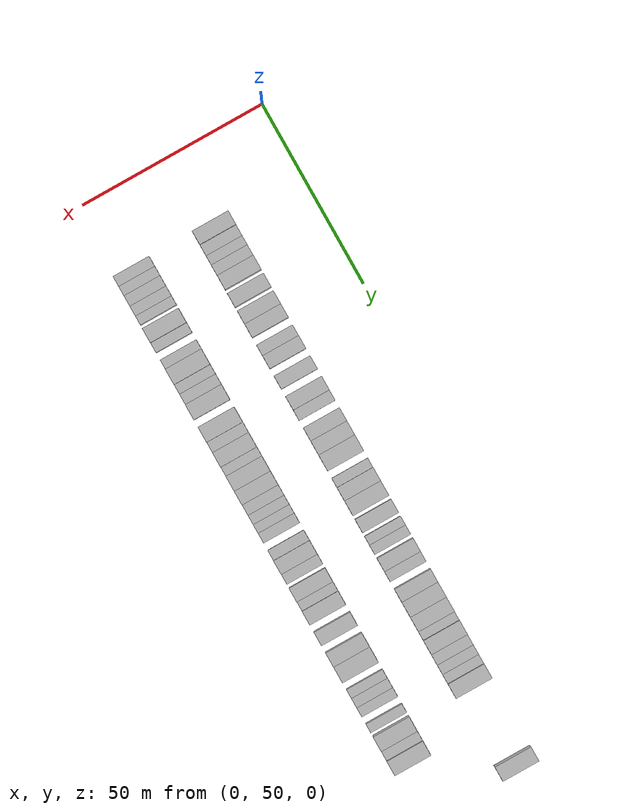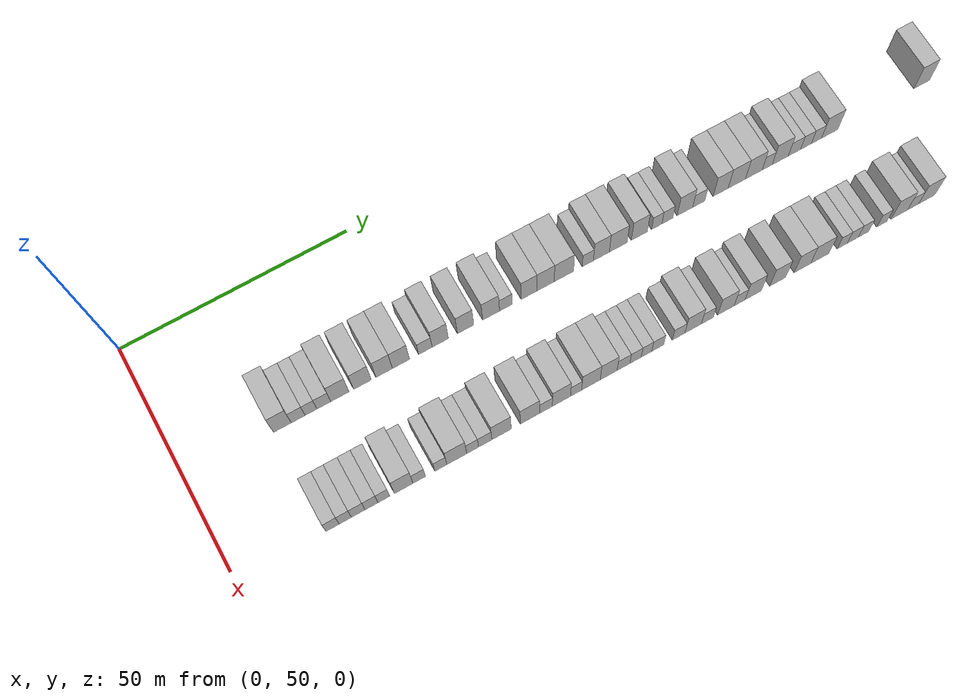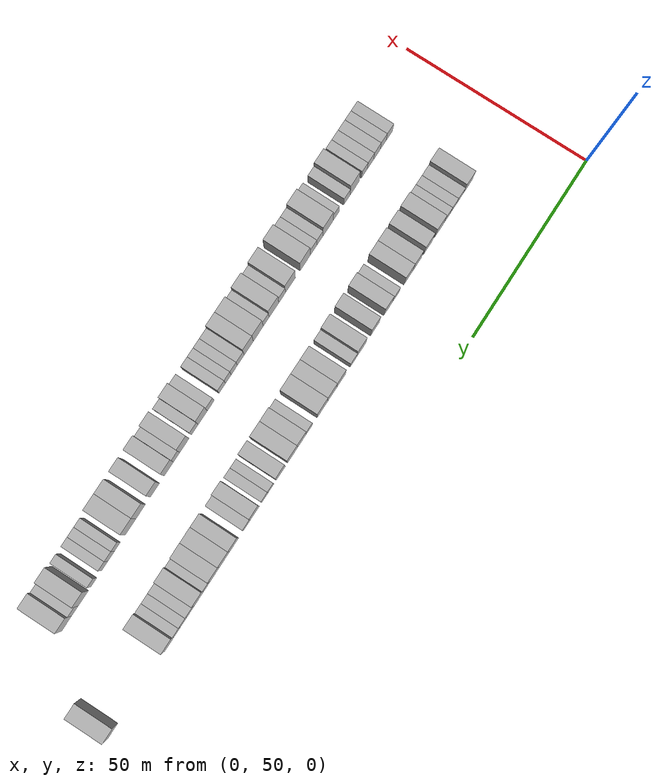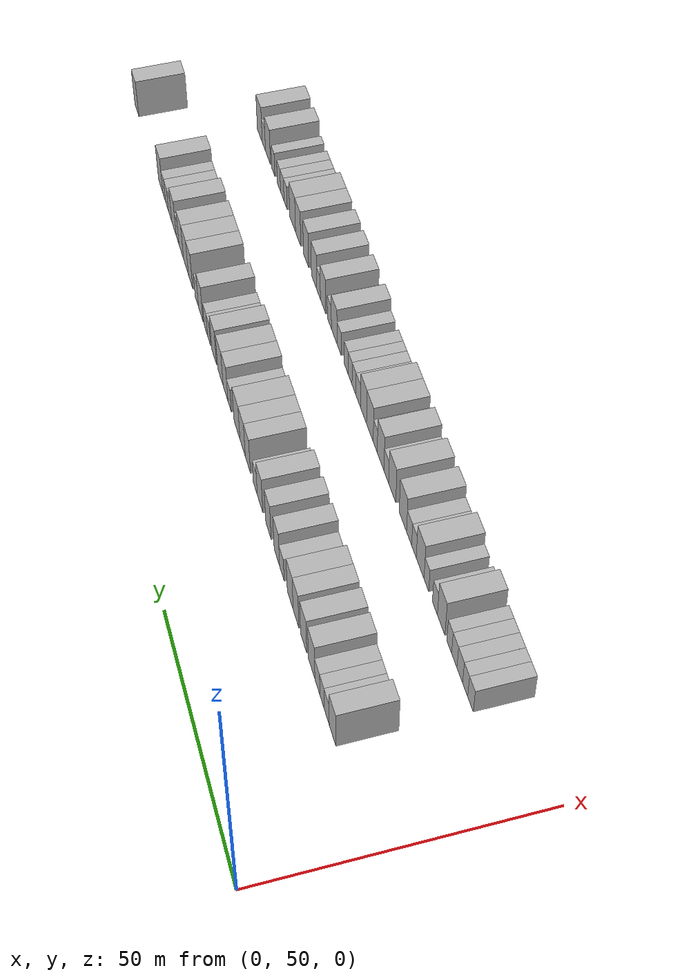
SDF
<sdf version="1.6">
 <world name="default">
  <model name="building_71">
   <static>1</static>
   <pose>25.0000 70.6925 0 0.000000 0.000000 0.000000</pose>
   <link name="link">
    <pose>0 0 4.50 0 0 0</pose>
    <collision name="collision"><geometry><box><size>10.0000 3.7847 9.0000</size></box></geometry></collision>
    <visual name="visual">
     <cast_shadows>0</cast_shadows>
     <geometry><box><size>10.0000 3.7847 9.0000</size></box></geometry>
     <material>
      <script>
       <uri>model://HANNAS_wall/materials/scripts</uri>
       <uri>model://HANNAS_wall/materials/textures</uri>
       <name>vrc/HANNAS_wall</name>
      </script>
     </material>
    </visual>
   </link>
  </model>
  <model name="building_72">
   <static>1</static>
   <pose>25.0000 74.0738 0 0.000000 0.000000 0.000000</pose>
   <link name="link">
    <pose>0 0 3.00 0 0 0</pose>
    <collision name="collision"><geometry><box><size>10.0000 2.9777 6.0000</size></box></geometry></collision>
    <visual name="visual">
     <cast_shadows>0</cast_shadows>
     <geometry><box><size>10.0000 2.9777 6.0000</size></box></geometry>
     <material>
      <script>
       <uri>model://HANNAS_wall/materials/scripts</uri>
       <uri>model://HANNAS_wall/materials/textures</uri>
       <name>vrc/HANNAS_wall</name>
      </script>
     </material>
    </visual>
   </link>
  </model>
  <model name="building_73">
   <static>1</static>
   <pose>25.0000 76.8311 0 0.000000 0.000000 0.000000</pose>
   <link name="link">
    <pose>0 0 3.00 0 0 0</pose>
    <collision name="collision"><geometry><box><size>10.0000 2.5370 6.0000</size></box></geometry></collision>
    <visual name="visual">
     <cast_shadows>0</cast_shadows>
     <geometry><box><size>10.0000 2.5370 6.0000</size></box></geometry>
     <material>
      <script>
       <uri>model://HANNAS_wall/materials/scripts</uri>
       <uri>model://HANNAS_wall/materials/textures</uri>
       <name>vrc/HANNAS_wall</name>
      </script>
     </material>
    </visual>
   </link>
  </model>
  <model name="building_74">
   <static>1</static>
   <pose>25.0000 79.5878 0 0.000000 0.000000 0.000000</pose>
   <link name="link">
    <pose>0 0 3.00 0 0 0</pose>
    <collision name="collision"><geometry><box><size>10.0000 2.9764 6.0000</size></box></geometry></collision>
    <visual name="visual">
     <cast_shadows>0</cast_shadows>
     <geometry><box><size>10.0000 2.9764 6.0000</size></box></geometry>
     <material>
      <script>
       <uri>model://HANNAS_wall/materials/scripts</uri>
       <uri>model://HANNAS_wall/materials/textures</uri>
       <name>vrc/HANNAS_wall</name>
      </script>
     </material>
    </visual>
   </link>
  </model>
  <model name="building_75">
   <static>1</static>
   <pose>25.0000 83.0574 0 0.000000 0.000000 0.000000</pose>
   <link name="link">
    <pose>0 0 4.50 0 0 0</pose>
    <collision name="collision"><geometry><box><size>10.0000 3.9626 9.0000</size></box></geometry></collision>
    <visual name="visual">
     <cast_shadows>0</cast_shadows>
     <geometry><box><size>10.0000 3.9626 9.0000</size></box></geometry>
     <material>
      <script>
       <uri>model://HANNAS_wall/materials/scripts</uri>
       <uri>model://HANNAS_wall/materials/textures</uri>
       <name>vrc/HANNAS_wall</name>
      </script>
     </material>
    </visual>
   </link>
  </model>
  <model name="building_76">
   <static>1</static>
   <pose>25.0000 87.9692 0 0.000000 0.000000 0.000000</pose>
   <link name="link">
    <pose>0 0 4.50 0 0 0</pose>
    <collision name="collision"><geometry><box><size>10.0000 3.8612 9.0000</size></box></geometry></collision>
    <visual name="visual">
     <cast_shadows>0</cast_shadows>
     <geometry><box><size>10.0000 3.8612 9.0000</size></box></geometry>
     <material>
      <script>
       <uri>model://HANNAS_wall/materials/scripts</uri>
       <uri>model://HANNAS_wall/materials/textures</uri>
       <name>vrc/HANNAS_wall</name>
      </script>
     </material>
    </visual>
   </link>
  </model>
  <model name="building_77">
   <static>1</static>
   <pose>25.0000 92.7121 0 0.000000 0.000000 0.000000</pose>
   <link name="link">
    <pose>0 0 4.50 0 0 0</pose>
    <collision name="collision"><geometry><box><size>10.0000 3.6245 9.0000</size></box></geometry></collision>
    <visual name="visual">
     <cast_shadows>0</cast_shadows>
     <geometry><box><size>10.0000 3.6245 9.0000</size></box></geometry>
     <material>
      <script>
       <uri>model://HANNAS_wall/materials/scripts</uri>
       <uri>model://HANNAS_wall/materials/textures</uri>
       <name>vrc/HANNAS_wall</name>
      </script>
     </material>
    </visual>
   </link>
  </model>
  <model name="building_78">
   <static>1</static>
   <pose>25.0000 96.4121 0 0.000000 0.000000 0.000000</pose>
   <link name="link">
    <pose>0 0 4.50 0 0 0</pose>
    <collision name="collision"><geometry><box><size>10.0000 3.7755 9.0000</size></box></geometry></collision>
    <visual name="visual">
     <cast_shadows>0</cast_shadows>
     <geometry><box><size>10.0000 3.7755 9.0000</size></box></geometry>
     <material>
      <script>
       <uri>model://HANNAS_wall/materials/scripts</uri>
       <uri>model://HANNAS_wall/materials/textures</uri>
       <name>vrc/HANNAS_wall</name>
      </script>
     </material>
    </visual>
   </link>
  </model>
  <model name="building_79">
   <static>1</static>
   <pose>25.0000 101.7986 0 0.000000 0.000000 0.000000</pose>
   <link name="link">
    <pose>0 0 3.00 0 0 0</pose>
    <collision name="collision"><geometry><box><size>10.0000 2.9976 6.0000</size></box></geometry></collision>
    <visual name="visual">
     <cast_shadows>0</cast_shadows>
     <geometry><box><size>10.0000 2.9976 6.0000</size></box></geometry>
     <material>
      <script>
       <uri>model://HANNAS_wall/materials/scripts</uri>
       <uri>model://HANNAS_wall/materials/textures</uri>
       <name>vrc/HANNAS_wall</name>
      </script>
     </material>
    </visual>
   </link>
  </model>
  <model name="building_80">
   <static>1</static>
   <pose>25.0000 105.1049 0 0.000000 0.000000 0.000000</pose>
   <link name="link">
    <pose>0 0 4.50 0 0 0</pose>
    <collision name="collision"><geometry><box><size>10.0000 3.6151 9.0000</size></box></geometry></collision>
    <visual name="visual">
     <cast_shadows>0</cast_shadows>
     <geometry><box><size>10.0000 3.6151 9.0000</size></box></geometry>
     <material>
      <script>
       <uri>model://HANNAS_wall/materials/scripts</uri>
       <uri>model://HANNAS_wall/materials/textures</uri>
       <name>vrc/HANNAS_wall</name>
      </script>
     </material>
    </visual>
   </link>
  </model>
  <model name="building_81">
   <static>1</static>
   <pose>25.0000 110.7392 0 0.000000 0.000000 0.000000</pose>
   <link name="link">
    <pose>0 0 4.50 0 0 0</pose>
    <collision name="collision"><geometry><box><size>10.0000 3.6534 9.0000</size></box></geometry></collision>
    <visual name="visual">
     <cast_shadows>0</cast_shadows>
     <geometry><box><size>10.0000 3.6534 9.0000</size></box></geometry>
     <material>
      <script>
       <uri>model://HANNAS_wall/materials/scripts</uri>
       <uri>model://HANNAS_wall/materials/textures</uri>
       <name>vrc/HANNAS_wall</name>
      </script>
     </material>
    </visual>
   </link>
  </model>
  <model name="building_82">
   <static>1</static>
   <pose>25.0000 116.4728 0 0.000000 0.000000 0.000000</pose>
   <link name="link">
    <pose>0 0 4.50 0 0 0</pose>
    <collision name="collision"><geometry><box><size>10.0000 3.8138 9.0000</size></box></geometry></collision>
    <visual name="visual">
     <cast_shadows>0</cast_shadows>
     <geometry><box><size>10.0000 3.8138 9.0000</size></box></geometry>
     <material>
      <script>
       <uri>model://HANNAS_wall/materials/scripts</uri>
       <uri>model://HANNAS_wall/materials/textures</uri>
       <name>vrc/HANNAS_wall</name>
      </script>
     </material>
    </visual>
   </link>
  </model>
  <model name="building_83">
   <static>1</static>
   <pose>25.0000 119.8220 0 0.000000 0.000000 0.000000</pose>
   <link name="link">
    <pose>0 0 3.00 0 0 0</pose>
    <collision name="collision"><geometry><box><size>10.0000 2.8844 6.0000</size></box></geometry></collision>
    <visual name="visual">
     <cast_shadows>0</cast_shadows>
     <geometry><box><size>10.0000 2.8844 6.0000</size></box></geometry>
     <material>
      <script>
       <uri>model://HANNAS_wall/materials/scripts</uri>
       <uri>model://HANNAS_wall/materials/textures</uri>
       <name>vrc/HANNAS_wall</name>
      </script>
     </material>
    </visual>
   </link>
  </model>
  <model name="building_84">
   <static>1</static>
   <pose>25.0000 125.0940 0 0.000000 0.000000 0.000000</pose>
   <link name="link">
    <pose>0 0 4.50 0 0 0</pose>
    <collision name="collision"><geometry><box><size>10.0000 3.6598 9.0000</size></box></geometry></collision>
    <visual name="visual">
     <cast_shadows>0</cast_shadows>
     <geometry><box><size>10.0000 3.6598 9.0000</size></box></geometry>
     <material>
      <script>
       <uri>model://HANNAS_wall/materials/scripts</uri>
       <uri>model://HANNAS_wall/materials/textures</uri>
       <name>vrc/HANNAS_wall</name>
      </script>
     </material>
    </visual>
   </link>
  </model>
  <model name="building_85">
   <static>1</static>
   <pose>25.0000 128.8646 0 0.000000 0.000000 0.000000</pose>
   <link name="link">
    <pose>0 0 4.50 0 0 0</pose>
    <collision name="collision"><geometry><box><size>10.0000 3.8814 9.0000</size></box></geometry></collision>
    <visual name="visual">
     <cast_shadows>0</cast_shadows>
     <geometry><box><size>10.0000 3.8814 9.0000</size></box></geometry>
     <material>
      <script>
       <uri>model://HANNAS_wall/materials/scripts</uri>
       <uri>model://HANNAS_wall/materials/textures</uri>
       <name>vrc/HANNAS_wall</name>
      </script>
     </material>
    </visual>
   </link>
  </model>
  <model name="building_86">
   <static>1</static>
   <pose>25.0000 133.0244 0 0.000000 0.000000 0.000000</pose>
   <link name="link">
    <pose>0 0 4.50 0 0 0</pose>
    <collision name="collision"><geometry><box><size>10.0000 4.4382 9.0000</size></box></geometry></collision>
    <visual name="visual">
     <cast_shadows>0</cast_shadows>
     <geometry><box><size>10.0000 4.4382 9.0000</size></box></geometry>
     <material>
      <script>
       <uri>model://HANNAS_wall/materials/scripts</uri>
       <uri>model://HANNAS_wall/materials/textures</uri>
       <name>vrc/HANNAS_wall</name>
      </script>
     </material>
    </visual>
   </link>
  </model>
  <model name="building_87">
   <static>1</static>
   <pose>25.0000 138.5246 0 0.000000 0.000000 0.000000</pose>
   <link name="link">
    <pose>0 0 3.00 0 0 0</pose>
    <collision name="collision"><geometry><box><size>10.0000 2.5621 6.0000</size></box></geometry></collision>
    <visual name="visual">
     <cast_shadows>0</cast_shadows>
     <geometry><box><size>10.0000 2.5621 6.0000</size></box></geometry>
     <material>
      <script>
       <uri>model://HANNAS_wall/materials/scripts</uri>
       <uri>model://HANNAS_wall/materials/textures</uri>
       <name>vrc/HANNAS_wall</name>
      </script>
     </material>
    </visual>
   </link>
  </model>
  <model name="building_88">
   <static>1</static>
   <pose>25.0000 141.6546 0 0.000000 0.000000 0.000000</pose>
   <link name="link">
    <pose>0 0 4.50 0 0 0</pose>
    <collision name="collision"><geometry><box><size>10.0000 3.6978 9.0000</size></box></geometry></collision>
    <visual name="visual">
     <cast_shadows>0</cast_shadows>
     <geometry><box><size>10.0000 3.6978 9.0000</size></box></geometry>
     <material>
      <script>
       <uri>model://HANNAS_wall/materials/scripts</uri>
       <uri>model://HANNAS_wall/materials/textures</uri>
       <name>vrc/HANNAS_wall</name>
      </script>
     </material>
    </visual>
   </link>
  </model>
  <model name="building_89">
   <static>1</static>
   <pose>25.0000 145.5647 0 0.000000 0.000000 0.000000</pose>
   <link name="link">
    <pose>0 0 4.50 0 0 0</pose>
    <collision name="collision"><geometry><box><size>10.0000 4.1223 9.0000</size></box></geometry></collision>
    <visual name="visual">
     <cast_shadows>0</cast_shadows>
     <geometry><box><size>10.0000 4.1223 9.0000</size></box></geometry>
     <material>
      <script>
       <uri>model://HANNAS_wall/materials/scripts</uri>
       <uri>model://HANNAS_wall/materials/textures</uri>
       <name>vrc/HANNAS_wall</name>
      </script>
     </material>
    </visual>
   </link>
  </model>
  <model name="building_90">
   <static>1</static>
   <pose>25.0000 150.4881 0 0.000000 0.000000 0.000000</pose>
   <link name="link">
    <pose>0 0 4.50 0 0 0</pose>
    <collision name="collision"><geometry><box><size>10.0000 3.7246 9.0000</size></box></geometry></collision>
    <visual name="visual">
     <cast_shadows>0</cast_shadows>
     <geometry><box><size>10.0000 3.7246 9.0000</size></box></geometry>
     <material>
      <script>
       <uri>model://HANNAS_wall/materials/scripts</uri>
       <uri>model://HANNAS_wall/materials/textures</uri>
       <name>vrc/HANNAS_wall</name>
      </script>
     </material>
    </visual>
   </link>
  </model>
  <model name="building_91">
   <static>1</static>
   <pose>25.0000 154.5665 0 0.000000 0.000000 0.000000</pose>
   <link name="link">
    <pose>0 0 3.00 0 0 0</pose>
    <collision name="collision"><geometry><box><size>10.0000 2.4322 6.0000</size></box></geometry></collision>
    <visual name="visual">
     <cast_shadows>0</cast_shadows>
     <geometry><box><size>10.0000 2.4322 6.0000</size></box></geometry>
     <material>
      <script>
       <uri>model://HANNAS_wall/materials/scripts</uri>
       <uri>model://HANNAS_wall/materials/textures</uri>
       <name>vrc/HANNAS_wall</name>
      </script>
     </material>
    </visual>
   </link>
  </model>
  <model name="building_92">
   <static>1</static>
   <pose>25.0000 157.0869 0 0.000000 0.000000 0.000000</pose>
   <link name="link">
    <pose>0 0 3.00 0 0 0</pose>
    <collision name="collision"><geometry><box><size>10.0000 2.6086 6.0000</size></box></geometry></collision>
    <visual name="visual">
     <cast_shadows>0</cast_shadows>
     <geometry><box><size>10.0000 2.6086 6.0000</size></box></geometry>
     <material>
      <script>
       <uri>model://HANNAS_wall/materials/scripts</uri>
       <uri>model://HANNAS_wall/materials/textures</uri>
       <name>vrc/HANNAS_wall</name>
      </script>
     </material>
    </visual>
   </link>
  </model>
  <model name="building_93">
   <static>1</static>
   <pose>25.0000 161.2301 0 0.000000 0.000000 0.000000</pose>
   <link name="link">
    <pose>0 0 4.50 0 0 0</pose>
    <collision name="collision"><geometry><box><size>10.0000 3.6778 9.0000</size></box></geometry></collision>
    <visual name="visual">
     <cast_shadows>0</cast_shadows>
     <geometry><box><size>10.0000 3.6778 9.0000</size></box></geometry>
     <material>
      <script>
       <uri>model://HANNAS_wall/materials/scripts</uri>
       <uri>model://HANNAS_wall/materials/textures</uri>
       <name>vrc/HANNAS_wall</name>
      </script>
     </material>
    </visual>
   </link>
  </model>
  <model name="building_94">
   <static>1</static>
   <pose>25.0000 164.5067 0 0.000000 0.000000 0.000000</pose>
   <link name="link">
    <pose>0 0 3.00 0 0 0</pose>
    <collision name="collision"><geometry><box><size>10.0000 2.8755 6.0000</size></box></geometry></collision>
    <visual name="visual">
     <cast_shadows>0</cast_shadows>
     <geometry><box><size>10.0000 2.8755 6.0000</size></box></geometry>
     <material>
      <script>
       <uri>model://HANNAS_wall/materials/scripts</uri>
       <uri>model://HANNAS_wall/materials/textures</uri>
       <name>vrc/HANNAS_wall</name>
      </script>
     </material>
    </visual>
   </link>
  </model>
  <model name="building_95">
   <static>1</static>
   <pose>25.0000 169.7453 0 0.000000 0.000000 0.000000</pose>
   <link name="link">
    <pose>0 0 4.50 0 0 0</pose>
    <collision name="collision"><geometry><box><size>10.0000 3.6017 9.0000</size></box></geometry></collision>
    <visual name="visual">
     <cast_shadows>0</cast_shadows>
     <geometry><box><size>10.0000 3.6017 9.0000</size></box></geometry>
     <material>
      <script>
       <uri>model://HANNAS_wall/materials/scripts</uri>
       <uri>model://HANNAS_wall/materials/textures</uri>
       <name>vrc/HANNAS_wall</name>
      </script>
     </material>
    </visual>
   </link>
  </model>
  <model name="building_96">
   <static>1</static>
   <pose>25.0000 173.6255 0 0.000000 0.000000 0.000000</pose>
   <link name="link">
    <pose>0 0 4.50 0 0 0</pose>
    <collision name="collision"><geometry><box><size>10.0000 4.1586 9.0000</size></box></geometry></collision>
    <visual name="visual">
     <cast_shadows>0</cast_shadows>
     <geometry><box><size>10.0000 4.1586 9.0000</size></box></geometry>
     <material>
      <script>
       <uri>model://HANNAS_wall/materials/scripts</uri>
       <uri>model://HANNAS_wall/materials/textures</uri>
       <name>vrc/HANNAS_wall</name>
      </script>
     </material>
    </visual>
   </link>
  </model>
  <model name="building_97">
   <static>1</static>
   <pose>25.0000 177.7033 0 0.000000 0.000000 0.000000</pose>
   <link name="link">
    <pose>0 0 4.50 0 0 0</pose>
    <collision name="collision"><geometry><box><size>10.0000 3.9970 9.0000</size></box></geometry></collision>
    <visual name="visual">
     <cast_shadows>0</cast_shadows>
     <geometry><box><size>10.0000 3.9970 9.0000</size></box></geometry>
     <material>
      <script>
       <uri>model://HANNAS_wall/materials/scripts</uri>
       <uri>model://HANNAS_wall/materials/textures</uri>
       <name>vrc/HANNAS_wall</name>
      </script>
     </material>
    </visual>
   </link>
  </model>
  <model name="building_98">
   <static>1</static>
   <pose>25.0000 180.9214 0 0.000000 0.000000 0.000000</pose>
   <link name="link">
    <pose>0 0 3.00 0 0 0</pose>
    <collision name="collision"><geometry><box><size>10.0000 2.4392 6.0000</size></box></geometry></collision>
    <visual name="visual">
     <cast_shadows>0</cast_shadows>
     <geometry><box><size>10.0000 2.4392 6.0000</size></box></geometry>
     <material>
      <script>
       <uri>model://HANNAS_wall/materials/scripts</uri>
       <uri>model://HANNAS_wall/materials/textures</uri>
       <name>vrc/HANNAS_wall</name>
      </script>
     </material>
    </visual>
   </link>
  </model>
  <model name="building_99">
   <static>1</static>
   <pose>25.0000 184.0937 0 0.000000 0.000000 0.000000</pose>
   <link name="link">
    <pose>0 0 4.50 0 0 0</pose>
    <collision name="collision"><geometry><box><size>10.0000 3.9053 9.0000</size></box></geometry></collision>
    <visual name="visual">
     <cast_shadows>0</cast_shadows>
     <geometry><box><size>10.0000 3.9053 9.0000</size></box></geometry>
     <material>
      <script>
       <uri>model://HANNAS_wall/materials/scripts</uri>
       <uri>model://HANNAS_wall/materials/textures</uri>
       <name>vrc/HANNAS_wall</name>
      </script>
     </material>
    </visual>
   </link>
  </model>
  <model name="building_100">
   <static>1</static>
   <pose>25.0000 187.5462 0 0.000000 0.000000 0.000000</pose>
   <link name="link">
    <pose>0 0 3.00 0 0 0</pose>
    <collision name="collision"><geometry><box><size>10.0000 2.9998 6.0000</size></box></geometry></collision>
    <visual name="visual">
     <cast_shadows>0</cast_shadows>
     <geometry><box><size>10.0000 2.9998 6.0000</size></box></geometry>
     <material>
      <script>
       <uri>model://HANNAS_wall/materials/scripts</uri>
       <uri>model://HANNAS_wall/materials/textures</uri>
       <name>vrc/HANNAS_wall</name>
      </script>
     </material>
    </visual>
   </link>
  </model>
  <model name="building_101">
   <static>1</static>
   <pose>25.0000 190.3577 0 0.000000 0.000000 0.000000</pose>
   <link name="link">
    <pose>0 0 3.00 0 0 0</pose>
    <collision name="collision"><geometry><box><size>10.0000 2.6231 6.0000</size></box></geometry></collision>
    <visual name="visual">
     <cast_shadows>0</cast_shadows>
     <geometry><box><size>10.0000 2.6231 6.0000</size></box></geometry>
     <material>
      <script>
       <uri>model://HANNAS_wall/materials/scripts</uri>
       <uri>model://HANNAS_wall/materials/textures</uri>
       <name>vrc/HANNAS_wall</name>
      </script>
     </material>
    </visual>
   </link>
  </model>
  <model name="building_102">
   <static>1</static>
   <pose>25.0000 192.9261 0 0.000000 0.000000 0.000000</pose>
   <link name="link">
    <pose>0 0 3.00 0 0 0</pose>
    <collision name="collision"><geometry><box><size>10.0000 2.5137 6.0000</size></box></geometry></collision>
    <visual name="visual">
     <cast_shadows>0</cast_shadows>
     <geometry><box><size>10.0000 2.5137 6.0000</size></box></geometry>
     <material>
      <script>
       <uri>model://HANNAS_wall/materials/scripts</uri>
       <uri>model://HANNAS_wall/materials/textures</uri>
       <name>vrc/HANNAS_wall</name>
      </script>
     </material>
    </visual>
   </link>
  </model>
  <model name="building_103">
   <static>1</static>
   <pose>25.0000 196.1796 0 0.000000 0.000000 0.000000</pose>
   <link name="link">
    <pose>0 0 4.50 0 0 0</pose>
    <collision name="collision"><geometry><box><size>10.0000 3.9934 9.0000</size></box></geometry></collision>
    <visual name="visual">
     <cast_shadows>0</cast_shadows>
     <geometry><box><size>10.0000 3.9934 9.0000</size></box></geometry>
     <material>
      <script>
       <uri>model://HANNAS_wall/materials/scripts</uri>
       <uri>model://HANNAS_wall/materials/textures</uri>
       <name>vrc/HANNAS_wall</name>
      </script>
     </material>
    </visual>
   </link>
  </model>
  <model name="building_104">
   <static>1</static>
   <pose>25.0000 219.1206 0 0.000000 0.000000 0.000000</pose>
   <link name="link">
    <pose>0 0 4.50 0 0 0</pose>
    <collision name="collision"><geometry><box><size>10.0000 3.9628 9.0000</size></box></geometry></collision>
    <visual name="visual">
     <cast_shadows>0</cast_shadows>
     <geometry><box><size>10.0000 3.9628 9.0000</size></box></geometry>
     <material>
      <script>
       <uri>model://HANNAS_wall/materials/scripts</uri>
       <uri>model://HANNAS_wall/materials/textures</uri>
       <name>vrc/HANNAS_wall</name>
      </script>
     </material>
    </visual>
   </link>
  </model>
  <model name="building_179">
   <static>1</static>
   <pose>47.0000 70.2388 0 0.000000 0.000000 0.000000</pose>
   <link name="link">
    <pose>0 0 3.00 0 0 0</pose>
    <collision name="collision"><geometry><box><size>10.0000 2.7821 6.0000</size></box></geometry></collision>
    <visual name="visual">
     <cast_shadows>0</cast_shadows>
     <geometry><box><size>10.0000 2.7821 6.0000</size></box></geometry>
     <material>
      <script>
       <uri>model://HANNAS_wall/materials/scripts</uri>
       <uri>model://HANNAS_wall/materials/textures</uri>
       <name>vrc/HANNAS_wall</name>
      </script>
     </material>
    </visual>
   </link>
  </model>
  <model name="building_180">
   <static>1</static>
   <pose>47.0000 72.9209 0 0.000000 0.000000 0.000000</pose>
   <link name="link">
    <pose>0 0 3.00 0 0 0</pose>
    <collision name="collision"><geometry><box><size>10.0000 2.5823 6.0000</size></box></geometry></collision>
    <visual name="visual">
     <cast_shadows>0</cast_shadows>
     <geometry><box><size>10.0000 2.5823 6.0000</size></box></geometry>
     <material>
      <script>
       <uri>model://HANNAS_wall/materials/scripts</uri>
       <uri>model://HANNAS_wall/materials/textures</uri>
       <name>vrc/HANNAS_wall</name>
      </script>
     </material>
    </visual>
   </link>
  </model>
  <model name="building_181">
   <static>1</static>
   <pose>47.0000 75.6537 0 0.000000 0.000000 0.000000</pose>
   <link name="link">
    <pose>0 0 3.00 0 0 0</pose>
    <collision name="collision"><geometry><box><size>10.0000 2.8832 6.0000</size></box></geometry></collision>
    <visual name="visual">
     <cast_shadows>0</cast_shadows>
     <geometry><box><size>10.0000 2.8832 6.0000</size></box></geometry>
     <material>
      <script>
       <uri>model://HANNAS_wall/materials/scripts</uri>
       <uri>model://HANNAS_wall/materials/textures</uri>
       <name>vrc/HANNAS_wall</name>
      </script>
     </material>
    </visual>
   </link>
  </model>
  <model name="building_182">
   <static>1</static>
   <pose>47.0000 78.4676 0 0.000000 0.000000 0.000000</pose>
   <link name="link">
    <pose>0 0 3.00 0 0 0</pose>
    <collision name="collision"><geometry><box><size>10.0000 2.7446 6.0000</size></box></geometry></collision>
    <visual name="visual">
     <cast_shadows>0</cast_shadows>
     <geometry><box><size>10.0000 2.7446 6.0000</size></box></geometry>
     <material>
      <script>
       <uri>model://HANNAS_wall/materials/scripts</uri>
       <uri>model://HANNAS_wall/materials/textures</uri>
       <name>vrc/HANNAS_wall</name>
      </script>
     </material>
    </visual>
   </link>
  </model>
  <model name="building_183">
   <static>1</static>
   <pose>47.0000 81.0848 0 0.000000 0.000000 0.000000</pose>
   <link name="link">
    <pose>0 0 3.00 0 0 0</pose>
    <collision name="collision"><geometry><box><size>10.0000 2.4898 6.0000</size></box></geometry></collision>
    <visual name="visual">
     <cast_shadows>0</cast_shadows>
     <geometry><box><size>10.0000 2.4898 6.0000</size></box></geometry>
     <material>
      <script>
       <uri>model://HANNAS_wall/materials/scripts</uri>
       <uri>model://HANNAS_wall/materials/textures</uri>
       <name>vrc/HANNAS_wall</name>
      </script>
     </material>
    </visual>
   </link>
  </model>
  <model name="building_184">
   <static>1</static>
   <pose>47.0000 85.3177 0 0.000000 0.000000 0.000000</pose>
   <link name="link">
    <pose>0 0 4.50 0 0 0</pose>
    <collision name="collision"><geometry><box><size>10.0000 3.9760 9.0000</size></box></geometry></collision>
    <visual name="visual">
     <cast_shadows>0</cast_shadows>
     <geometry><box><size>10.0000 3.9760 9.0000</size></box></geometry>
     <material>
      <script>
       <uri>model://HANNAS_wall/materials/scripts</uri>
       <uri>model://HANNAS_wall/materials/textures</uri>
       <name>vrc/HANNAS_wall</name>
      </script>
     </material>
    </visual>
   </link>
  </model>
  <model name="building_185">
   <static>1</static>
   <pose>47.0000 88.6511 0 0.000000 0.000000 0.000000</pose>
   <link name="link">
    <pose>0 0 3.00 0 0 0</pose>
    <collision name="collision"><geometry><box><size>10.0000 2.6910 6.0000</size></box></geometry></collision>
    <visual name="visual">
     <cast_shadows>0</cast_shadows>
     <geometry><box><size>10.0000 2.6910 6.0000</size></box></geometry>
     <material>
      <script>
       <uri>model://HANNAS_wall/materials/scripts</uri>
       <uri>model://HANNAS_wall/materials/textures</uri>
       <name>vrc/HANNAS_wall</name>
      </script>
     </material>
    </visual>
   </link>
  </model>
  <model name="building_186">
   <static>1</static>
   <pose>47.0000 93.2908 0 0.000000 0.000000 0.000000</pose>
   <link name="link">
    <pose>0 0 3.00 0 0 0</pose>
    <collision name="collision"><geometry><box><size>10.0000 2.5885 6.0000</size></box></geometry></collision>
    <visual name="visual">
     <cast_shadows>0</cast_shadows>
     <geometry><box><size>10.0000 2.5885 6.0000</size></box></geometry>
     <material>
      <script>
       <uri>model://HANNAS_wall/materials/scripts</uri>
       <uri>model://HANNAS_wall/materials/textures</uri>
       <name>vrc/HANNAS_wall</name>
      </script>
     </material>
    </visual>
   </link>
  </model>
  <model name="building_187">
   <static>1</static>
   <pose>47.0000 96.7380 0 0.000000 0.000000 0.000000</pose>
   <link name="link">
    <pose>0 0 4.50 0 0 0</pose>
    <collision name="collision"><geometry><box><size>10.0000 4.3059 9.0000</size></box></geometry></collision>
    <visual name="visual">
     <cast_shadows>0</cast_shadows>
     <geometry><box><size>10.0000 4.3059 9.0000</size></box></geometry>
     <material>
      <script>
       <uri>model://HANNAS_wall/materials/scripts</uri>
       <uri>model://HANNAS_wall/materials/textures</uri>
       <name>vrc/HANNAS_wall</name>
      </script>
     </material>
    </visual>
   </link>
  </model>
  <model name="building_188">
   <static>1</static>
   <pose>47.0000 100.1878 0 0.000000 0.000000 0.000000</pose>
   <link name="link">
    <pose>0 0 3.00 0 0 0</pose>
    <collision name="collision"><geometry><box><size>10.0000 2.5937 6.0000</size></box></geometry></collision>
    <visual name="visual">
     <cast_shadows>0</cast_shadows>
     <geometry><box><size>10.0000 2.5937 6.0000</size></box></geometry>
     <material>
      <script>
       <uri>model://HANNAS_wall/materials/scripts</uri>
       <uri>model://HANNAS_wall/materials/textures</uri>
       <name>vrc/HANNAS_wall</name>
      </script>
     </material>
    </visual>
   </link>
  </model>
  <model name="building_189">
   <static>1</static>
   <pose>47.0000 102.9383 0 0.000000 0.000000 0.000000</pose>
   <link name="link">
    <pose>0 0 3.00 0 0 0</pose>
    <collision name="collision"><geometry><box><size>10.0000 2.9072 6.0000</size></box></geometry></collision>
    <visual name="visual">
     <cast_shadows>0</cast_shadows>
     <geometry><box><size>10.0000 2.9072 6.0000</size></box></geometry>
     <material>
      <script>
       <uri>model://HANNAS_wall/materials/scripts</uri>
       <uri>model://HANNAS_wall/materials/textures</uri>
       <name>vrc/HANNAS_wall</name>
      </script>
     </material>
    </visual>
   </link>
  </model>
  <model name="building_190">
   <static>1</static>
   <pose>47.0000 106.5171 0 0.000000 0.000000 0.000000</pose>
   <link name="link">
    <pose>0 0 4.50 0 0 0</pose>
    <collision name="collision"><geometry><box><size>10.0000 4.2504 9.0000</size></box></geometry></collision>
    <visual name="visual">
     <cast_shadows>0</cast_shadows>
     <geometry><box><size>10.0000 4.2504 9.0000</size></box></geometry>
     <material>
      <script>
       <uri>model://HANNAS_wall/materials/scripts</uri>
       <uri>model://HANNAS_wall/materials/textures</uri>
       <name>vrc/HANNAS_wall</name>
      </script>
     </material>
    </visual>
   </link>
  </model>
  <model name="building_191">
   <static>1</static>
   <pose>47.0000 112.7558 0 0.000000 0.000000 0.000000</pose>
   <link name="link">
    <pose>0 0 4.50 0 0 0</pose>
    <collision name="collision"><geometry><box><size>10.0000 4.2270 9.0000</size></box></geometry></collision>
    <visual name="visual">
     <cast_shadows>0</cast_shadows>
     <geometry><box><size>10.0000 4.2270 9.0000</size></box></geometry>
     <material>
      <script>
       <uri>model://HANNAS_wall/materials/scripts</uri>
       <uri>model://HANNAS_wall/materials/textures</uri>
       <name>vrc/HANNAS_wall</name>
      </script>
     </material>
    </visual>
   </link>
  </model>
  <model name="building_192">
   <static>1</static>
   <pose>47.0000 116.2891 0 0.000000 0.000000 0.000000</pose>
   <link name="link">
    <pose>0 0 3.00 0 0 0</pose>
    <collision name="collision"><geometry><box><size>10.0000 2.8396 6.0000</size></box></geometry></collision>
    <visual name="visual">
     <cast_shadows>0</cast_shadows>
     <geometry><box><size>10.0000 2.8396 6.0000</size></box></geometry>
     <material>
      <script>
       <uri>model://HANNAS_wall/materials/scripts</uri>
       <uri>model://HANNAS_wall/materials/textures</uri>
       <name>vrc/HANNAS_wall</name>
      </script>
     </material>
    </visual>
   </link>
  </model>
  <model name="building_193">
   <static>1</static>
   <pose>47.0000 119.7292 0 0.000000 0.000000 0.000000</pose>
   <link name="link">
    <pose>0 0 4.50 0 0 0</pose>
    <collision name="collision"><geometry><box><size>10.0000 4.0406 9.0000</size></box></geometry></collision>
    <visual name="visual">
     <cast_shadows>0</cast_shadows>
     <geometry><box><size>10.0000 4.0406 9.0000</size></box></geometry>
     <material>
      <script>
       <uri>model://HANNAS_wall/materials/scripts</uri>
       <uri>model://HANNAS_wall/materials/textures</uri>
       <name>vrc/HANNAS_wall</name>
      </script>
     </material>
    </visual>
   </link>
  </model>
  <model name="building_194">
   <static>1</static>
   <pose>47.0000 122.9950 0 0.000000 0.000000 0.000000</pose>
   <link name="link">
    <pose>0 0 3.00 0 0 0</pose>
    <collision name="collision"><geometry><box><size>10.0000 2.4909 6.0000</size></box></geometry></collision>
    <visual name="visual">
     <cast_shadows>0</cast_shadows>
     <geometry><box><size>10.0000 2.4909 6.0000</size></box></geometry>
     <material>
      <script>
       <uri>model://HANNAS_wall/materials/scripts</uri>
       <uri>model://HANNAS_wall/materials/textures</uri>
       <name>vrc/HANNAS_wall</name>
      </script>
     </material>
    </visual>
   </link>
  </model>
  <model name="building_195">
   <static>1</static>
   <pose>47.0000 126.3210 0 0.000000 0.000000 0.000000</pose>
   <link name="link">
    <pose>0 0 4.50 0 0 0</pose>
    <collision name="collision"><geometry><box><size>10.0000 4.1613 9.0000</size></box></geometry></collision>
    <visual name="visual">
     <cast_shadows>0</cast_shadows>
     <geometry><box><size>10.0000 4.1613 9.0000</size></box></geometry>
     <material>
      <script>
       <uri>model://HANNAS_wall/materials/scripts</uri>
       <uri>model://HANNAS_wall/materials/textures</uri>
       <name>vrc/HANNAS_wall</name>
      </script>
     </material>
    </visual>
   </link>
  </model>
  <model name="building_196">
   <static>1</static>
   <pose>47.0000 130.3072 0 0.000000 0.000000 0.000000</pose>
   <link name="link">
    <pose>0 0 4.50 0 0 0</pose>
    <collision name="collision"><geometry><box><size>10.0000 3.8109 9.0000</size></box></geometry></collision>
    <visual name="visual">
     <cast_shadows>0</cast_shadows>
     <geometry><box><size>10.0000 3.8109 9.0000</size></box></geometry>
     <material>
      <script>
       <uri>model://HANNAS_wall/materials/scripts</uri>
       <uri>model://HANNAS_wall/materials/textures</uri>
       <name>vrc/HANNAS_wall</name>
      </script>
     </material>
    </visual>
   </link>
  </model>
  <model name="building_197">
   <static>1</static>
   <pose>47.0000 133.6572 0 0.000000 0.000000 0.000000</pose>
   <link name="link">
    <pose>0 0 3.00 0 0 0</pose>
    <collision name="collision"><geometry><box><size>10.0000 2.8890 6.0000</size></box></geometry></collision>
    <visual name="visual">
     <cast_shadows>0</cast_shadows>
     <geometry><box><size>10.0000 2.8890 6.0000</size></box></geometry>
     <material>
      <script>
       <uri>model://HANNAS_wall/materials/scripts</uri>
       <uri>model://HANNAS_wall/materials/textures</uri>
       <name>vrc/HANNAS_wall</name>
      </script>
     </material>
    </visual>
   </link>
  </model>
  <model name="building_198">
   <static>1</static>
   <pose>47.0000 136.3827 0 0.000000 0.000000 0.000000</pose>
   <link name="link">
    <pose>0 0 3.00 0 0 0</pose>
    <collision name="collision"><geometry><box><size>10.0000 2.5621 6.0000</size></box></geometry></collision>
    <visual name="visual">
     <cast_shadows>0</cast_shadows>
     <geometry><box><size>10.0000 2.5621 6.0000</size></box></geometry>
     <material>
      <script>
       <uri>model://HANNAS_wall/materials/scripts</uri>
       <uri>model://HANNAS_wall/materials/textures</uri>
       <name>vrc/HANNAS_wall</name>
      </script>
     </material>
    </visual>
   </link>
  </model>
  <model name="building_199">
   <static>1</static>
   <pose>47.0000 138.8734 0 0.000000 0.000000 0.000000</pose>
   <link name="link">
    <pose>0 0 3.00 0 0 0</pose>
    <collision name="collision"><geometry><box><size>10.0000 2.4193 6.0000</size></box></geometry></collision>
    <visual name="visual">
     <cast_shadows>0</cast_shadows>
     <geometry><box><size>10.0000 2.4193 6.0000</size></box></geometry>
     <material>
      <script>
       <uri>model://HANNAS_wall/materials/scripts</uri>
       <uri>model://HANNAS_wall/materials/textures</uri>
       <name>vrc/HANNAS_wall</name>
      </script>
     </material>
    </visual>
   </link>
  </model>
  <model name="building_200">
   <static>1</static>
   <pose>47.0000 141.4407 0 0.000000 0.000000 0.000000</pose>
   <link name="link">
    <pose>0 0 3.00 0 0 0</pose>
    <collision name="collision"><geometry><box><size>10.0000 2.7153 6.0000</size></box></geometry></collision>
    <visual name="visual">
     <cast_shadows>0</cast_shadows>
     <geometry><box><size>10.0000 2.7153 6.0000</size></box></geometry>
     <material>
      <script>
       <uri>model://HANNAS_wall/materials/scripts</uri>
       <uri>model://HANNAS_wall/materials/textures</uri>
       <name>vrc/HANNAS_wall</name>
      </script>
     </material>
    </visual>
   </link>
  </model>
  <model name="building_201">
   <static>1</static>
   <pose>47.0000 146.2120 0 0.000000 0.000000 0.000000</pose>
   <link name="link">
    <pose>0 0 3.00 0 0 0</pose>
    <collision name="collision"><geometry><box><size>10.0000 2.8273 6.0000</size></box></geometry></collision>
    <visual name="visual">
     <cast_shadows>0</cast_shadows>
     <geometry><box><size>10.0000 2.8273 6.0000</size></box></geometry>
     <material>
      <script>
       <uri>model://HANNAS_wall/materials/scripts</uri>
       <uri>model://HANNAS_wall/materials/textures</uri>
       <name>vrc/HANNAS_wall</name>
      </script>
     </material>
    </visual>
   </link>
  </model>
  <model name="building_202">
   <static>1</static>
   <pose>47.0000 149.5215 0 0.000000 0.000000 0.000000</pose>
   <link name="link">
    <pose>0 0 4.50 0 0 0</pose>
    <collision name="collision"><geometry><box><size>10.0000 3.7916 9.0000</size></box></geometry></collision>
    <visual name="visual">
     <cast_shadows>0</cast_shadows>
     <geometry><box><size>10.0000 3.7916 9.0000</size></box></geometry>
     <material>
      <script>
       <uri>model://HANNAS_wall/materials/scripts</uri>
       <uri>model://HANNAS_wall/materials/textures</uri>
       <name>vrc/HANNAS_wall</name>
      </script>
     </material>
    </visual>
   </link>
  </model>
  <model name="building_203">
   <static>1</static>
   <pose>47.0000 152.8263 0 0.000000 0.000000 0.000000</pose>
   <link name="link">
    <pose>0 0 3.00 0 0 0</pose>
    <collision name="collision"><geometry><box><size>10.0000 2.8181 6.0000</size></box></geometry></collision>
    <visual name="visual">
     <cast_shadows>0</cast_shadows>
     <geometry><box><size>10.0000 2.8181 6.0000</size></box></geometry>
     <material>
      <script>
       <uri>model://HANNAS_wall/materials/scripts</uri>
       <uri>model://HANNAS_wall/materials/textures</uri>
       <name>vrc/HANNAS_wall</name>
      </script>
     </material>
    </visual>
   </link>
  </model>
  <model name="building_204">
   <static>1</static>
   <pose>47.0000 157.1415 0 0.000000 0.000000 0.000000</pose>
   <link name="link">
    <pose>0 0 4.50 0 0 0</pose>
    <collision name="collision"><geometry><box><size>10.0000 3.8122 9.0000</size></box></geometry></collision>
    <visual name="visual">
     <cast_shadows>0</cast_shadows>
     <geometry><box><size>10.0000 3.8122 9.0000</size></box></geometry>
     <material>
      <script>
       <uri>model://HANNAS_wall/materials/scripts</uri>
       <uri>model://HANNAS_wall/materials/textures</uri>
       <name>vrc/HANNAS_wall</name>
      </script>
     </material>
    </visual>
   </link>
  </model>
  <model name="building_205">
   <static>1</static>
   <pose>47.0000 160.3356 0 0.000000 0.000000 0.000000</pose>
   <link name="link">
    <pose>0 0 3.00 0 0 0</pose>
    <collision name="collision"><geometry><box><size>10.0000 2.5761 6.0000</size></box></geometry></collision>
    <visual name="visual">
     <cast_shadows>0</cast_shadows>
     <geometry><box><size>10.0000 2.5761 6.0000</size></box></geometry>
     <material>
      <script>
       <uri>model://HANNAS_wall/materials/scripts</uri>
       <uri>model://HANNAS_wall/materials/textures</uri>
       <name>vrc/HANNAS_wall</name>
      </script>
     </material>
    </visual>
   </link>
  </model>
  <model name="building_206">
   <static>1</static>
   <pose>47.0000 163.5277 0 0.000000 0.000000 0.000000</pose>
   <link name="link">
    <pose>0 0 4.50 0 0 0</pose>
    <collision name="collision"><geometry><box><size>10.0000 3.8079 9.0000</size></box></geometry></collision>
    <visual name="visual">
     <cast_shadows>0</cast_shadows>
     <geometry><box><size>10.0000 3.8079 9.0000</size></box></geometry>
     <material>
      <script>
       <uri>model://HANNAS_wall/materials/scripts</uri>
       <uri>model://HANNAS_wall/materials/textures</uri>
       <name>vrc/HANNAS_wall</name>
      </script>
     </material>
    </visual>
   </link>
  </model>
  <model name="building_207">
   <static>1</static>
   <pose>47.0000 169.3004 0 0.000000 0.000000 0.000000</pose>
   <link name="link">
    <pose>0 0 4.50 0 0 0</pose>
    <collision name="collision"><geometry><box><size>10.0000 3.7376 9.0000</size></box></geometry></collision>
    <visual name="visual">
     <cast_shadows>0</cast_shadows>
     <geometry><box><size>10.0000 3.7376 9.0000</size></box></geometry>
     <material>
      <script>
       <uri>model://HANNAS_wall/materials/scripts</uri>
       <uri>model://HANNAS_wall/materials/textures</uri>
       <name>vrc/HANNAS_wall</name>
      </script>
     </material>
    </visual>
   </link>
  </model>
  <model name="building_208">
   <static>1</static>
   <pose>47.0000 175.1134 0 0.000000 0.000000 0.000000</pose>
   <link name="link">
    <pose>0 0 4.50 0 0 0</pose>
    <collision name="collision"><geometry><box><size>10.0000 3.8883 9.0000</size></box></geometry></collision>
    <visual name="visual">
     <cast_shadows>0</cast_shadows>
     <geometry><box><size>10.0000 3.8883 9.0000</size></box></geometry>
     <material>
      <script>
       <uri>model://HANNAS_wall/materials/scripts</uri>
       <uri>model://HANNAS_wall/materials/textures</uri>
       <name>vrc/HANNAS_wall</name>
      </script>
     </material>
    </visual>
   </link>
  </model>
  <model name="building_209">
   <static>1</static>
   <pose>47.0000 179.2397 0 0.000000 0.000000 0.000000</pose>
   <link name="link">
    <pose>0 0 4.50 0 0 0</pose>
    <collision name="collision"><geometry><box><size>10.0000 4.3644 9.0000</size></box></geometry></collision>
    <visual name="visual">
     <cast_shadows>0</cast_shadows>
     <geometry><box><size>10.0000 4.3644 9.0000</size></box></geometry>
     <material>
      <script>
       <uri>model://HANNAS_wall/materials/scripts</uri>
       <uri>model://HANNAS_wall/materials/textures</uri>
       <name>vrc/HANNAS_wall</name>
      </script>
     </material>
    </visual>
   </link>
  </model>
  <model name="building_210">
   <static>1</static>
   <pose>47.0000 184.6328 0 0.000000 0.000000 0.000000</pose>
   <link name="link">
    <pose>0 0 3.00 0 0 0</pose>
    <collision name="collision"><geometry><box><size>10.0000 2.4218 6.0000</size></box></geometry></collision>
    <visual name="visual">
     <cast_shadows>0</cast_shadows>
     <geometry><box><size>10.0000 2.4218 6.0000</size></box></geometry>
     <material>
      <script>
       <uri>model://HANNAS_wall/materials/scripts</uri>
       <uri>model://HANNAS_wall/materials/textures</uri>
       <name>vrc/HANNAS_wall</name>
      </script>
     </material>
    </visual>
   </link>
  </model>
  <model name="building_211">
   <static>1</static>
   <pose>47.0000 187.1597 0 0.000000 0.000000 0.000000</pose>
   <link name="link">
    <pose>0 0 3.00 0 0 0</pose>
    <collision name="collision"><geometry><box><size>10.0000 2.6319 6.0000</size></box></geometry></collision>
    <visual name="visual">
     <cast_shadows>0</cast_shadows>
     <geometry><box><size>10.0000 2.6319 6.0000</size></box></geometry>
     <material>
      <script>
       <uri>model://HANNAS_wall/materials/scripts</uri>
       <uri>model://HANNAS_wall/materials/textures</uri>
       <name>vrc/HANNAS_wall</name>
      </script>
     </material>
    </visual>
   </link>
  </model>
  <model name="building_212">
   <static>1</static>
   <pose>47.0000 189.7280 0 0.000000 0.000000 0.000000</pose>
   <link name="link">
    <pose>0 0 3.00 0 0 0</pose>
    <collision name="collision"><geometry><box><size>10.0000 2.5048 6.0000</size></box></geometry></collision>
    <visual name="visual">
     <cast_shadows>0</cast_shadows>
     <geometry><box><size>10.0000 2.5048 6.0000</size></box></geometry>
     <material>
      <script>
       <uri>model://HANNAS_wall/materials/scripts</uri>
       <uri>model://HANNAS_wall/materials/textures</uri>
       <name>vrc/HANNAS_wall</name>
      </script>
     </material>
    </visual>
   </link>
  </model>
  <model name="building_213">
   <static>1</static>
   <pose>47.0000 194.1887 0 0.000000 0.000000 0.000000</pose>
   <link name="link">
    <pose>0 0 3.00 0 0 0</pose>
    <collision name="collision"><geometry><box><size>10.0000 2.4165 6.0000</size></box></geometry></collision>
    <visual name="visual">
     <cast_shadows>0</cast_shadows>
     <geometry><box><size>10.0000 2.4165 6.0000</size></box></geometry>
     <material>
      <script>
       <uri>model://HANNAS_wall/materials/scripts</uri>
       <uri>model://HANNAS_wall/materials/textures</uri>
       <name>vrc/HANNAS_wall</name>
      </script>
     </material>
    </visual>
   </link>
  </model>
  <model name="building_214">
   <static>1</static>
   <pose>47.0000 198.4155 0 0.000000 0.000000 0.000000</pose>
   <link name="link">
    <pose>0 0 4.50 0 0 0</pose>
    <collision name="collision"><geometry><box><size>10.0000 4.0371 9.0000</size></box></geometry></collision>
    <visual name="visual">
     <cast_shadows>0</cast_shadows>
     <geometry><box><size>10.0000 4.0371 9.0000</size></box></geometry>
     <material>
      <script>
       <uri>model://HANNAS_wall/materials/scripts</uri>
       <uri>model://HANNAS_wall/materials/textures</uri>
       <name>vrc/HANNAS_wall</name>
      </script>
     </material>
    </visual>
   </link>
  </model>
  <model name="building_215">
   <static>1</static>
   <pose>47.0000 201.7788 0 0.000000 0.000000 0.000000</pose>
   <link name="link">
    <pose>0 0 3.00 0 0 0</pose>
    <collision name="collision"><geometry><box><size>10.0000 2.6895 6.0000</size></box></geometry></collision>
    <visual name="visual">
     <cast_shadows>0</cast_shadows>
     <geometry><box><size>10.0000 2.6895 6.0000</size></box></geometry>
     <material>
      <script>
       <uri>model://HANNAS_wall/materials/scripts</uri>
       <uri>model://HANNAS_wall/materials/textures</uri>
       <name>vrc/HANNAS_wall</name>
      </script>
     </material>
    </visual>
   </link>
  </model>
  <model name="building_216">
   <static>1</static>
   <pose>47.0000 205.1169 0 0.000000 0.000000 0.000000</pose>
   <link name="link">
    <pose>0 0 4.50 0 0 0</pose>
    <collision name="collision"><geometry><box><size>10.0000 3.9867 9.0000</size></box></geometry></collision>
    <visual name="visual">
     <cast_shadows>0</cast_shadows>
     <geometry><box><size>10.0000 3.9867 9.0000</size></box></geometry>
     <material>
      <script>
       <uri>model://HANNAS_wall/materials/scripts</uri>
       <uri>model://HANNAS_wall/materials/textures</uri>
       <name>vrc/HANNAS_wall</name>
      </script>
     </material>
    </visual>
   </link>
  </model>
 </world>
</sdf>
